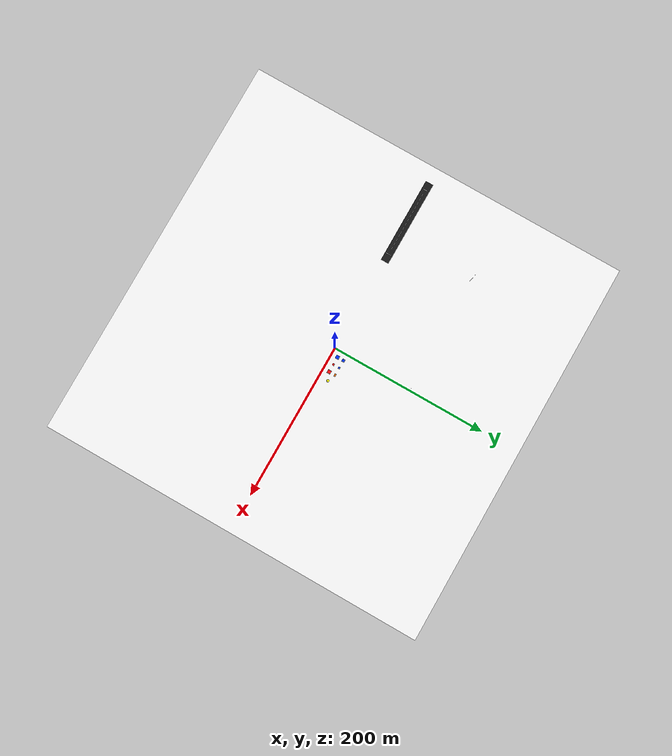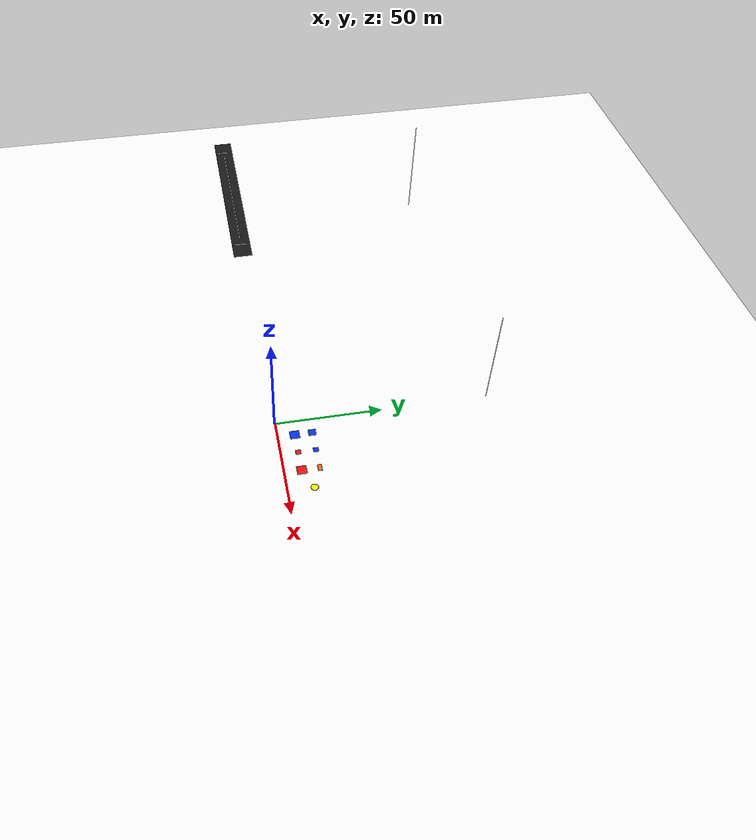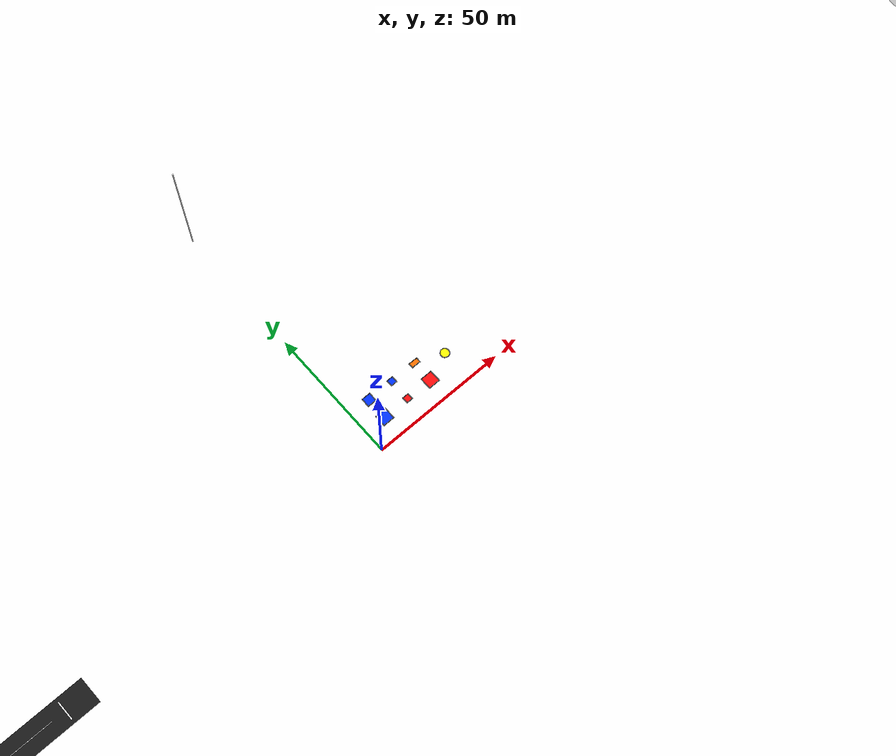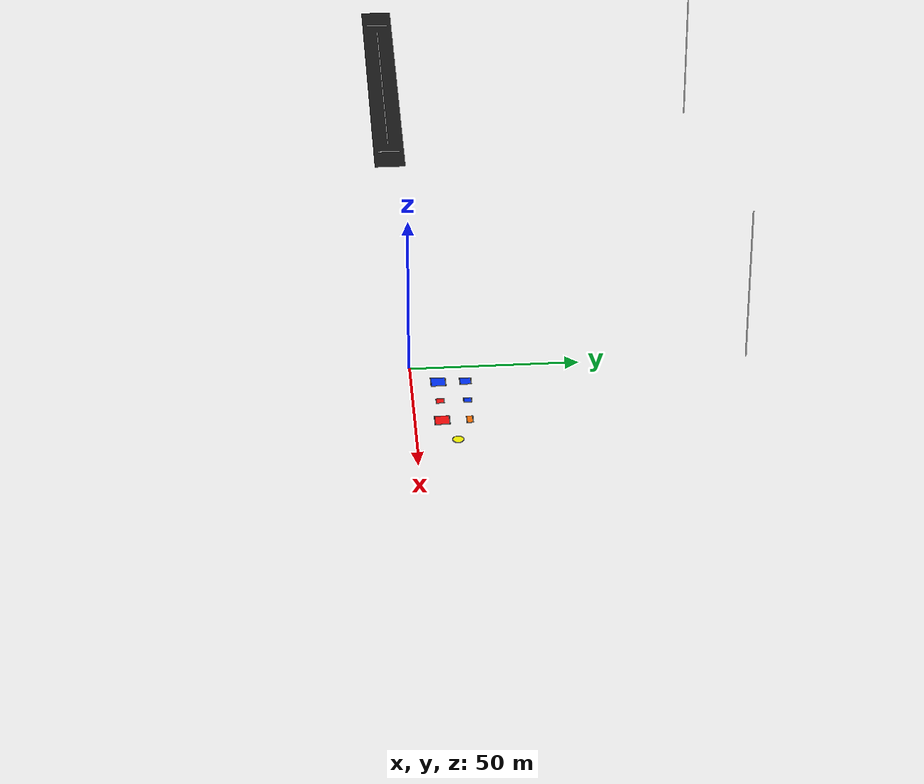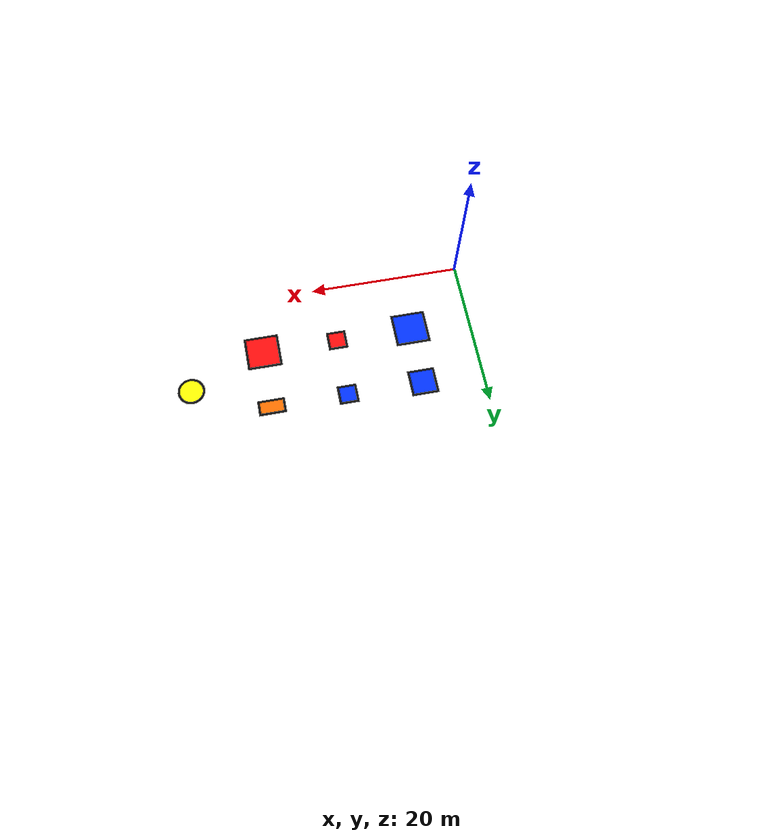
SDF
<sdf version="1.7">
 <world name="competition">
  <physics name="1ms" type="ode">
   <max_step_size>0.001</max_step_size>
   <real_time_factor>1.0</real_time_factor>
   <real_time_update_rate>1000</real_time_update_rate>
  </physics>
  <plugin filename="gz-sim-physics-system" name="gz::sim::systems::Physics"/>
  <plugin filename="gz-sim-user-commands-system" name="gz::sim::systems::UserCommands"/>
  <plugin filename="gz-sim-scene-broadcaster-system" name="gz::sim::systems::SceneBroadcaster"/>
  <plugin filename="gz-sim-sensors-system" name="gz::sim::systems::Sensors">
   <render_engine>ogre2</render_engine>
  </plugin>
  <plugin filename="gz-sim-imu-system" name="gz::sim::systems::Imu"/>
  <plugin filename="gz-sim-contact-system" name="gz::sim::systems::Contact"/>
  <plugin filename="gz-sim-magnetometer-system" name="gz::sim::systems::Magnetometer"/>
  <plugin filename="gz-sim-air-pressure-system" name="gz::sim::systems::AirPressure"/>
  <spherical_coordinates>
   <surface_model>EARTH_WGS84</surface_model>
   <latitude_deg>-35.363262</latitude_deg>
   <longitude_deg>149.165237</longitude_deg>
   <elevation>584</elevation>
   <heading_deg>0</heading_deg>
  </spherical_coordinates>
  <light name="sun" type="directional">
   <pose>0 0 100 0 0 0</pose>
   <diffuse>1 1 1 1</diffuse>
   <specular>0.2 0.2 0.2 1</specular>
   <direction>-0.5 0.5 -1</direction>
  </light>
  <scene><ambient>0.8 0.8 0.8 1</ambient><background>0.7 0.85 1 1</background><shadows>true</shadows></scene>
  <model name="grass_field">
   <static>true</static>
   <pose>0 0 0.05 0 0 0</pose>
   <link name="link">
    <collision name="collision">
     <geometry><box><size>500 500 0.1</size></box></geometry>
     <surface><friction><ode><mu>0.6</mu><mu2>0.6</mu2></ode></friction></surface>
    </collision>
    <visual name="visual">
     <geometry><box><size>500 500 0.1</size></box></geometry>
     <material>
      <ambient>0.10 0.28 0.09 1</ambient>
      <diffuse>1 1 1 1</diffuse>
      <specular>0.02 0.02 0.02 1</specular>
      <pbr>
       <metal>
        <albedo_map>file:///home/inci/iha_ws/src/iha_gazebo/worlds/materials/textures/grass.jpg</albedo_map>
        <roughness>1.0</roughness>
        <metalness>0.0</metalness>
       </metal>
      </pbr>
     </material>
    </visual>
   </link>
  </model>
  <model name="runway">
   <static>true</static>
   <pose>-175 0 0.105 0 0 0</pose>
   <link name="link">
    <collision name="runway_collision">
     <geometry><box><size>110 10 0.01</size></box></geometry>
     <surface>
      <friction>
       <ode><mu>1.2</mu><mu2>1.2</mu2><fdir1>1 0 0</fdir1><slip1>0.0</slip1><slip2>0.0</slip2></ode>
      </friction>
      <contact>
       <ode>
        <soft_cfm>0.0001</soft_cfm>
        <soft_erp>0.2</soft_erp>
        <kp>1000000</kp>
        <kd>1</kd>
        <max_vel>0.2</max_vel>
        <min_depth>0.001</min_depth>
       </ode>
      </contact>
     </surface>
    </collision>
    <visual name="runway_visual">
     <geometry><box><size>110 10 0.01</size></box></geometry>
     <material>
      <ambient>0.08 0.08 0.08 1</ambient>
      <diffuse>0.10 0.10 0.10 1</diffuse>
      <specular>0.02 0.02 0.02 1</specular>
     </material>
    </visual>
   </link>
  </model>
  <model name="runway_centerline">
   <static>true</static>
   <pose>-175 0 0.112 0 0 0</pose>
   <link name="link">
    <visual name="centerline_visual">
     <geometry><box><size>80 0.18 0.01</size></box></geometry>
     <material><ambient>1 1 1 1</ambient><diffuse>1 1 1 1</diffuse><emissive>0.2 0.2 0.2 1</emissive></material>
    </visual>
   </link>
  </model>
  <model name="runway_start_mark">
   <static>true</static>
   <pose>-220 0 0.113 0 0 0</pose>
   <link name="link">
    <visual name="start_mark_visual">
     <geometry><box><size>0.5 7.0 0.01</size></box></geometry>
     <material><ambient>1 1 1 1</ambient><diffuse>1 1 1 1</diffuse><emissive>0.2 0.2 0.2 1</emissive></material>
    </visual>
   </link>
  </model>
  <model name="runway_end_mark">
   <static>true</static>
   <pose>-130 0 0.113 0 0 0</pose>
   <link name="link">
    <visual name="end_mark_visual">
     <geometry><box><size>0.5 7.0 0.01</size></box></geometry>
     <material><ambient>1 1 1 1</ambient><diffuse>1 1 1 1</diffuse><emissive>0.2 0.2 0.2 1</emissive></material>
    </visual>
   </link>
  </model>
  <model name="target_blue_big">
   <static>true</static>
   <pose>8 8 0 0 0 0</pose>
   <link name="link">
    <visual name="border_visual">
     <pose>0 0 0.115 0 0 0</pose>
     <geometry><box><size>4.6 4.6 0.03</size></box></geometry>
     <material><ambient>0.02 0.02 0.02 1</ambient><diffuse>0.02 0.02 0.02 1</diffuse></material>
    </visual>
    <visual name="inner_visual">
     <pose>0 0 0.135 0 0 0</pose>
     <geometry><box><size>4 4 0.03</size></box></geometry>
     <material>
      <ambient>0 0.2 1 1</ambient>
      <diffuse>0 0.2 1 1</diffuse>
      <emissive>0 0.03 0.15 1</emissive>
     </material>
    </visual>
   </link>
  </model>
  <model name="target_red_small">
   <static>true</static>
   <pose>18 8 0 0 0 0</pose>
   <link name="link">
    <visual name="border_visual">
     <pose>0 0 0.115 0 0 0</pose>
     <geometry><box><size>2.6 2.6 0.03</size></box></geometry>
     <material><ambient>0.02 0.02 0.02 1</ambient><diffuse>0.02 0.02 0.02 1</diffuse></material>
    </visual>
    <visual name="inner_visual">
     <pose>0 0 0.135 0 0 0</pose>
     <geometry><box><size>2 2 0.03</size></box></geometry>
     <material>
      <ambient>1 0.05 0.05 1</ambient>
      <diffuse>1 0.05 0.05 1</diffuse>
      <emissive>0.15 0.01 0.01 1</emissive>
     </material>
    </visual>
   </link>
  </model>
  <model name="decoy_blue_medium">
   <static>true</static>
   <pose>8 16 0 0 0 0</pose>
   <link name="link">
    <visual name="border_visual">
     <pose>0 0 0.115 0 0 0</pose>
     <geometry><box><size>3.6 3.6 0.03</size></box></geometry>
     <material><ambient>0.02 0.02 0.02 1</ambient><diffuse>0.02 0.02 0.02 1</diffuse></material>
    </visual>
    <visual name="inner_visual">
     <pose>0 0 0.135 0 0 0</pose>
     <geometry><box><size>3 3 0.03</size></box></geometry>
     <material>
      <ambient>0 0.2 1 1</ambient>
      <diffuse>0 0.2 1 1</diffuse>
      <emissive>0 0.02 0.12 1</emissive>
     </material>
    </visual>
   </link>
  </model>
  <model name="decoy_blue_small">
   <static>true</static>
   <pose>18 16 0 0 0 0</pose>
   <link name="link">
    <visual name="border_visual">
     <pose>0 0 0.115 0 0 0</pose>
     <geometry><box><size>2.6 2.6 0.03</size></box></geometry>
     <material><ambient>0.02 0.02 0.02 1</ambient><diffuse>0.02 0.02 0.02 1</diffuse></material>
    </visual>
    <visual name="inner_visual">
     <pose>0 0 0.135 0 0 0</pose>
     <geometry><box><size>2 2 0.03</size></box></geometry>
     <material>
      <ambient>0 0.2 1 1</ambient>
      <diffuse>0 0.2 1 1</diffuse>
      <emissive>0 0.02 0.12 1</emissive>
     </material>
    </visual>
   </link>
  </model>
  <model name="decoy_red_big">
   <static>true</static>
   <pose>28 8 0 0 0 0</pose>
   <link name="link">
    <visual name="border_visual">
     <pose>0 0 0.115 0 0 0</pose>
     <geometry><box><size>4.6 4.6 0.03</size></box></geometry>
     <material><ambient>0.02 0.02 0.02 1</ambient><diffuse>0.02 0.02 0.02 1</diffuse></material>
    </visual>
    <visual name="inner_visual">
     <pose>0 0 0.135 0 0 0</pose>
     <geometry><box><size>4 4 0.03</size></box></geometry>
     <material>
      <ambient>1 0.05 0.05 1</ambient>
      <diffuse>1 0.05 0.05 1</diffuse>
      <emissive>0.12 0.01 0.01 1</emissive>
     </material>
    </visual>
   </link>
  </model>
  <model name="decoy_rectangle">
   <static>true</static>
   <pose>28 16 0 0 0 0</pose>
   <link name="link">
    <visual name="border_visual">
     <pose>0 0 0.115 0 0 0</pose>
     <geometry><box><size>3.6 2.1 0.03</size></box></geometry>
     <material><ambient>0.02 0.02 0.02 1</ambient><diffuse>0.02 0.02 0.02 1</diffuse></material>
    </visual>
    <visual name="inner_visual">
     <pose>0 0 0.135 0 0 0</pose>
     <geometry><box><size>3 1.5 0.03</size></box></geometry>
     <material>
      <ambient>1 0.45 0 1</ambient>
      <diffuse>1 0.45 0 1</diffuse>
      <emissive>0.1 0.04 0 1</emissive>
     </material>
    </visual>
   </link>
  </model>
  <model name="decoy_circle">
   <static>true</static>
   <pose>38 12 0 0 0 0</pose>
   <link name="link">
    <visual name="border_visual">
     <pose>0 0 0.115 0 0 0</pose>
     <geometry><cylinder><radius>1.8</radius><length>0.03</length></cylinder></geometry>
     <material><ambient>0.02 0.02 0.02 1</ambient><diffuse>0.02 0.02 0.02 1</diffuse></material>
    </visual>
    <visual name="inner_visual">
     <pose>0 0 0.135 0 0 0</pose>
     <geometry><cylinder><radius>1.5</radius><length>0.03</length></cylinder></geometry>
     <material><ambient>1 1 0 1</ambient><diffuse>1 1 0 1</diffuse><emissive>0.12 0.12 0.01 1</emissive></material>
    </visual>
   </link>
  </model>
  <model name="direk_1">
   <static>true</static>
   <pose>-150 100 25 0 0 0</pose>
   <link name="link">
    <collision name="collision">
     <geometry><cylinder><radius>0.2</radius><length>50.0</length></cylinder></geometry>
    </collision>
    <visual name="visual">
     <geometry><cylinder><radius>0.2</radius><length>50.0</length></cylinder></geometry>
     <material><ambient>0.8 0.8 0.8 1</ambient><diffuse>1 1 1 1</diffuse></material>
    </visual>
   </link>
  </model>
  <model name="direk_2">
   <static>true</static>
   <pose>0 100 25 0 0 0</pose>
   <link name="link">
    <collision name="collision">
     <geometry><cylinder><radius>0.2</radius><length>50.0</length></cylinder></geometry>
    </collision>
    <visual name="visual">
     <geometry><cylinder><radius>0.2</radius><length>50.0</length></cylinder></geometry>
     <material><ambient>0.8 0.8 0.8 1</ambient><diffuse>1 1 1 1</diffuse></material>
    </visual>
   </link>
  </model>
  <plugin filename="gz-sim-navsat-system" name="gz::sim::systems::NavSat"/>
 </world>
</sdf>
